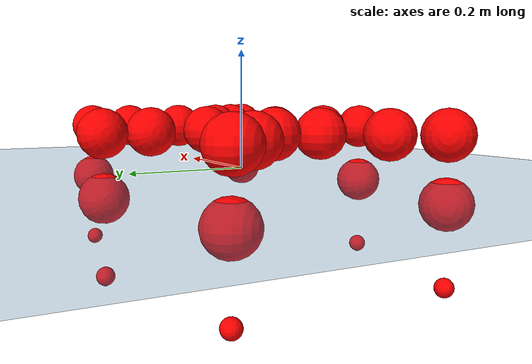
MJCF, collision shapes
<mujoco model="Golem">
  <compiler angle="radian" assetdir="assets" balanceinertia="true" inertiafromgeom="false"/>

  <option timestep="0.005" density="1.2" viscosity="2e-05"/>

  <size nkey="1"/>

  <visual>
    <quality shadowsize="8192"/>
    <map shadowclip="0.5"/>
  </visual>

  <default>
    <default class="/">
      <joint armature="0.01" damping="0.01" frictionloss="0.01"/>
      <geom contype="0" conaffinity="0" group="1" solref="-1000 -80"/>
      <site size="0.01 0.005 0.005" group="5"/>
      <general forcelimited="true" biastype="affine" gainprm="25" biasprm="0 -25 -0.5"/>
      <default class="visual">
        <geom type="mesh" group="2"/>
      </default>
      <default class="collision">
        <geom group="3"/>
      </default>
      <default class="foot">
        <geom size="0.01 0 0" condim="6" group="4" priority="1" solimp="0.015 1 0.01"/>
      </default>
      <default class="reward_collision_sphere">
        <geom group="5" rgba="1 0 0 1"/>
      </default>
    </default>
  </default>

  <asset>
    <texture type="skybox" colorspace="auto" name="//unnamed_texture_0" builtin="gradient" rgb1="0.95 0.95 0.95" rgb2="0.95 0.95 0.95" width="100" height="600"/>
    <texture type="2d" colorspace="auto" name="texplane" builtin="checker" rgb1="0.345 0.575 0.748" rgb2="0.345 0.575 0.748" markrgb="1 1 1" width="512" height="512"/>
    <material name="MatPlane" class="/" texture="texplane" texuniform="true" texrepeat="2 2" specular="0.9"/>
    <mesh name="body" class="/" file="body.stl" scale="0.001 0.001 0.001"/>
    <mesh name="coxa" class="/" file="coxa.stl" scale="0.001 0.001 0.001"/>
    <mesh name="femur" class="/" file="femur.stl" scale="0.001 0.001 0.001"/>
    <mesh name="tibia" class="/" file="tibia.stl" scale="0.001 0.001 0.001"/>
    <mesh name="tarsus" class="/" file="tarsus.stl" scale="0.001 0.001 0.001"/>
  </asset>

  <worldbody>
    <geom name="floor" class="/" size="100 100 0.125" type="plane" group="0" material="MatPlane"/>
    <light name="toplight_shadow" class="/" pos="0 0 5" dir="0.0990148 0.0990148 -0.990148" type="directional" ambient="0.04 0.04 0.04" diffuse="0.55 0.55 0.55" specular="0.12 0.12 0.12"/>
    <light name="toplight_fill" class="/" pos="0 0 5" dir="0.0990148 0.0990148 -0.990148" type="directional" castshadow="false" ambient="0.04 0.04 0.04" diffuse="0.3 0.3 0.3" specular="0.08 0.08 0.08"/>
    <body name="trunk" pos="0.000866561 6.58858e-05 0.000721201" quat="1 -6.96313e-05 1.66071e-05 0.000174565">
      <inertial pos="-0.000326175 -0.00074659 -0.00376212" quat="1 -0.000349147 5.1725e-06 0.000346027" mass="3.48106" diaginertia="0.0192626 0.00252717 0.0117175"/>
      <joint name="//unnamed_joint_0" type="free"/>
      <geom name="//unnamed_geom_1" class="/" pos="0 0 0.0659054" quat="1 0 0 0" type="mesh" rgba="0.9 0.9 0.9 1" mesh="body"/>
      <site name="imu" class="/" pos="0.145366 -0.000349634 0.106041" size="0.0097601"/>
      <camera name="track" class="/" pos="0 -1.51728 0" quat="0.707107 0.707107 0 0" mode="trackcom"/>
      <camera name="ego_camera" class="/" pos="0.148151 0 0.102977" quat="-0.5 -0.5 0.5 0.5"/>
      <body name="coxa_RR" pos="-0.202183 -0.0636908 0.0655333" quat="0.382841 3.15699e-05 0.000107248 -0.923814">
        <inertial pos="-0.000233374 -3.86121e-05 0.000716956" quat="0.99999 0.00223161 -0.00357088 -0.00134427" mass="0.187948" diaginertia="0.0193195 0.00254092 0.0116889"/>
        <joint name="coxa_joint_RR" class="/" pos="0 0 0" axis="-0.00599607 0.000891984 -0.999982" range="-3.13008 3.13901" armature="0.0100505" damping="0.00566676" frictionloss="0.0101645"/>
        <geom name="//unnamed_geom_2" class="/" type="mesh" rgba="0.2 0.2 0.2 1" mesh="coxa"/>
        <geom name="//unnamed_geom_3" class="reward_collision_sphere" size="0.0390404" pos="-0.0341886 0 0"/>
        <body name="femur_RR" pos="0.067269 0.00137557 -8.65606e-05" quat="0.499948 -0.500305 0.499817 0.49993">
          <inertial pos="0.000382692 -0.000101523 0.000581276" quat="0.999997 0.000187665 -0.00190517 0.00145002" mass="0.185871" diaginertia="0.0190088 0.00251077 0.0115647"/>
          <joint name="femur_joint_RR" class="/" pos="0 0 0" axis="-0.00222192 1.38812e-05 -0.999998" range="-3.13025 3.13943" armature="0.00983117" damping="0" frictionloss="0.0100652"/>
          <geom name="//unnamed_geom_4" class="/" type="mesh" rgba="0.9 0.9 0.9 1" mesh="femur"/>
          <geom name="//unnamed_geom_5" class="reward_collision_sphere" size="0.0390404"/>
          <body name="tibia_RR" pos="-0.000628478 -0.0816322 -0.000197911" quat="-3.39072e-05 1 1.74317e-05 9.95204e-05">
            <inertial pos="-0.000599802 -0.00080874 -0.000381414" quat="1 0.000273072 0.000302355 -0.000484777" mass="0.184507" diaginertia="0.0191135 0.00251267 0.0115547"/>
            <joint name="tibia_joint_RR" class="/" pos="0 0 0" axis="-0.000951354 -0.00028082 1" range="-3.14002 3.13895" armature="0.0097726" damping="0.00171579" frictionloss="0.0101913"/>
            <geom name="//unnamed_geom_6" class="/" type="mesh" rgba="0.2 0.2 0.2 1" mesh="tibia"/>
            <geom name="//unnamed_geom_7" class="reward_collision_sphere" size="0.0390404"/>
            <body name="tarsus_RR" pos="0.0994231 -0.000595756 -0.000987661" quat="1 -1.44452e-05 -7.02851e-06 1.8764e-05">
              <inertial pos="0.0693834 0.000695606 0.000172211" quat="0.503247 0.497753 0.499128 0.499856" mass="0.183441" diaginertia="0.019132 0.00249072 0.0115948"/>
              <joint name="tarsus_joint_RR" class="/" pos="0 0 0" axis="-5.09996e-05 0.000277603 1" range="-3.14929 3.15254" armature="0.00962376" damping="0.00183215" frictionloss="0.00976762"/>
              <geom name="//unnamed_geom_8" class="/" type="mesh" rgba="0.9 0.9 0.9 1" mesh="tarsus"/>
              <geom name="foot_1" class="foot" size="0.00934099" pos="0.127637 0 0" quat="0 -0.707107 0 0.707107"/>
              <geom name="//unnamed_geom_10" class="reward_collision_sphere" size="0.0390404"/>
              <geom name="//unnamed_geom_11" class="reward_collision_sphere" size="0.0146401" pos="0.122509 0 0"/>
              <site name="foot_1" class="foot" pos="0.127637 0 0" quat="0 -0.707107 0 0.707107" size="0.0097601"/>
            </body>
          </body>
        </body>
      </body>
      <body name="coxa_RM" pos="-0.000587226 -0.101283 0.064866" quat="0.707026 5.57767e-05 -0.000245025 -0.707187">
        <inertial pos="-0.000147107 0.000933215 -0.000281363" quat="0.999998 0.0011757 -0.000682273 -0.00128978" mass="0.18536" diaginertia="0.0191835 0.00251338 0.011495"/>
        <joint name="coxa_joint_RM" class="/" pos="0 0 0" axis="-3.03955e-05 -0.000859503 -1" range="-3.14799 3.14489" armature="0.00973644" damping="0.00896306" frictionloss="0.00971348"/>
        <geom name="//unnamed_geom_12" class="/" type="mesh" rgba="0.2 0.2 0.2 1" mesh="coxa"/>
        <geom name="//unnamed_geom_13" class="reward_collision_sphere" size="0.0390404" pos="-0.0341886 0 0"/>
        <body name="femur_RM" pos="0.0669727 -0.000719461 0.00106147" quat="0.500002 -0.499997 0.500007 0.499994">
          <inertial pos="-0.000166251 0.000739867 -0.000632474" quat="1 -7.05308e-05 0.000196858 -6.64461e-06" mass="0.184871" diaginertia="0.0191894 0.00251142 0.011491"/>
          <joint name="femur_joint_RM" class="/" pos="0 0 0" axis="-0.00173641 0.00264349 -0.999995" range="-3.13064 3.13926" armature="0.00958324" damping="0.00507005" frictionloss="0.0098531"/>
          <geom name="//unnamed_geom_14" class="/" type="mesh" rgba="0.9 0.9 0.9 1" mesh="femur"/>
          <geom name="//unnamed_geom_15" class="reward_collision_sphere" size="0.0390404"/>
          <body name="tibia_RM" pos="0.000711243 -0.0829367 -2.10564e-05" quat="-7.73187e-05 1 -0.000276215 -7.95241e-05">
            <inertial pos="-1.16296e-05 0.000402917 0.000190772" quat="1 0.000247307 0.00019257 -0.000117608" mass="0.184827" diaginertia="0.0189672 0.00248024 0.0115643"/>
            <joint name="tibia_joint_RM" class="/" pos="0 0 0" axis="-0.000300697 -0.000468189 1" range="-3.14247 3.14505" armature="0.00952594" damping="0" frictionloss="0.00951644"/>
            <geom name="//unnamed_geom_16" class="/" type="mesh" rgba="0.2 0.2 0.2 1" mesh="tibia"/>
            <geom name="//unnamed_geom_17" class="reward_collision_sphere" size="0.0390404"/>
            <body name="tarsus_RM" pos="0.100381 -0.000583527 0.000510425" quat="1 -8.1152e-05 0.000116573 -7.94663e-06">
              <inertial pos="0.0682196 0.000701396 -0.000662409" quat="0.503111 0.499459 0.499157 0.49826" mass="0.185997" diaginertia="0.0190219 0.00251269 0.0115191"/>
              <joint name="tarsus_joint_RM" class="/" pos="0 0 0" axis="-0.000619225 -0.000589858 1" stiffness="3.47639e-06" range="-3.13353 3.13287" armature="0.00970804" damping="0.00748483" frictionloss="0.00954766"/>
              <geom name="//unnamed_geom_18" class="/" type="mesh" rgba="0.9 0.9 0.9 1" mesh="tarsus"/>
              <geom name="foot_2" class="foot" size="0.00982162" pos="0.127637 0 0" quat="0 -0.707107 0 0.707107"/>
              <geom name="//unnamed_geom_20" class="reward_collision_sphere" size="0.0390404"/>
              <geom name="//unnamed_geom_21" class="reward_collision_sphere" size="0.0146401" pos="0.122509 0 0"/>
              <site name="foot_2" class="foot" pos="0.127637 0 0" quat="0 -0.707107 0 0.707107" size="0.0097601"/>
            </body>
          </body>
        </body>
      </body>
      <body name="coxa_RF" pos="0.203585 -0.0633641 0.0657699" quat="0.924065 -2.64534e-05 -0.000309776 -0.382235">
        <inertial pos="-0.000159815 -0.00091849 0.000735621" quat="0.999999 0.000193764 0.000742578 -0.00118358" mass="0.183155" diaginertia="0.0189977 0.0025012 0.0115281"/>
        <joint name="coxa_joint_RF" class="/" pos="0 0 0" axis="-0.00299675 -0.000130024 -0.999996" range="-3.13808 3.12147" armature="0.00980294" damping="0" frictionloss="0.00969867"/>
        <geom name="//unnamed_geom_22" class="/" type="mesh" rgba="0.2 0.2 0.2 1" mesh="coxa"/>
        <geom name="//unnamed_geom_23" class="reward_collision_sphere" size="0.0390404" pos="-0.0341886 0 0"/>
        <body name="femur_RF" pos="0.067761 0.00118286 -0.000268275" quat="0.49997 -0.500057 0.499985 0.499988">
          <inertial pos="0.000408126 -0.000147325 -0.000529" quat="0.999998 0.000396886 0.00170386 0.000311254" mass="0.1859" diaginertia="0.0191628 0.00247059 0.0114957"/>
          <joint name="femur_joint_RF" class="/" pos="0 0 0" axis="-6.21386e-05 0.000359828 -1" stiffness="4.43075e-05" range="-3.13808 3.1474" armature="0.00973166" damping="0.0056451" frictionloss="0.0101404"/>
          <geom name="//unnamed_geom_24" class="/" type="mesh" rgba="0.9 0.9 0.9 1" mesh="femur"/>
          <geom name="//unnamed_geom_25" class="reward_collision_sphere" size="0.0390404"/>
          <body name="tibia_RF" pos="0.000242275 -0.0831289 -0.000227645" quat="1.97237e-05 1 0.0001514 -8.72511e-05">
            <inertial pos="-0.000706903 0.000722232 -7.04892e-05" quat="0.999998 -0.00158484 0.000811424 -0.000690956" mass="0.188319" diaginertia="0.0194307 0.00254136 0.0115715"/>
            <joint name="tibia_joint_RF" class="/" pos="0 0 0" axis="0.00453627 -0.003333 0.999984" range="-3.13862 3.13953" armature="0.00999853" damping="0.00497922" frictionloss="0.00988859"/>
            <geom name="//unnamed_geom_26" class="/" type="mesh" rgba="0.2 0.2 0.2 1" mesh="tibia"/>
            <geom name="//unnamed_geom_27" class="reward_collision_sphere" size="0.0390404"/>
            <body name="tarsus_RF" pos="0.0999724 0.0010866 -0.000761748" quat="1 -0.000109557 0.000306078 -0.000187635">
              <inertial pos="0.0676354 0.000178429 -0.000321256" quat="0.500455 0.499606 0.500247 0.499692" mass="0.185404" diaginertia="0.0192056 0.00253278 0.0114873"/>
              <joint name="tarsus_joint_RF" class="/" pos="0 0 0" axis="0.000969375 -0.000523039 0.999999" stiffness="0.00281609" range="-3.12538 3.13736" armature="0.0097368" damping="0.00251728" frictionloss="0.00962904"/>
              <geom name="//unnamed_geom_28" class="/" type="mesh" rgba="0.9 0.9 0.9 1" mesh="tarsus"/>
              <geom name="foot_3" class="foot" size="0.0100619" pos="0.127637 0 0" quat="0 -0.707107 0 0.707107"/>
              <geom name="//unnamed_geom_30" class="reward_collision_sphere" size="0.0390404"/>
              <geom name="//unnamed_geom_31" class="reward_collision_sphere" size="0.0146401" pos="0.122509 0 0"/>
              <site name="foot_3" class="foot" pos="0.127637 0 0" quat="0 -0.707107 0 0.707107" size="0.0097601"/>
            </body>
          </body>
        </body>
      </body>
      <body name="coxa_LR" pos="-0.202435 0.0657828 0.067014" quat="0.382892 9.28499e-05 -4.64988e-05 0.923793">
        <inertial pos="-0.000164623 -0.000643492 0.000706901" quat="1 0.000120308 -0.000676043 0.000523724" mass="0.185181" diaginertia="0.0192045 0.00252297 0.0115564"/>
        <joint name="coxa_joint_LR" class="/" pos="0 0 0" axis="-0.000241164 0.00211542 -0.999998" range="-3.12736 3.14163" armature="0.00993538" damping="0.00857268" frictionloss="0.00967674"/>
        <geom name="//unnamed_geom_32" class="/" type="mesh" rgba="0.2 0.2 0.2 1" mesh="coxa"/>
        <geom name="//unnamed_geom_33" class="reward_collision_sphere" size="0.0390404" pos="-0.0341886 0 0"/>
        <body name="femur_LR" pos="0.0688213 -0.00156883 -0.00237379" quat="0.500001 -0.499984 0.499989 0.500025">
          <inertial pos="-0.000379873 0.000303957 -0.000971898" quat="1 8.59449e-05 0.000145629 -3.33343e-05" mass="0.183696" diaginertia="0.019247 0.00250443 0.0115531"/>
          <joint name="femur_joint_LR" class="/" pos="0 0 0" axis="-0.000236907 0.000130604 1" stiffness="3.76609e-05" range="-3.15059 3.13913" armature="0.00973162" damping="0.00728124" frictionloss="0.00984407"/>
          <geom name="//unnamed_geom_34" class="/" type="mesh" rgba="0.9 0.9 0.9 1" mesh="femur"/>
          <geom name="//unnamed_geom_35" class="reward_collision_sphere" size="0.0390404"/>
          <body name="tibia_LR" pos="-0.000731793 -0.0834069 -0.00203674" quat="-0.000214378 1 -1.9433e-05 0.000181104">
            <inertial pos="-0.000835712 0.000294118 -0.000195153" quat="1 0.000623116 0.000175068 0.000368585" mass="0.184454" diaginertia="0.0193378 0.00249924 0.0117094"/>
            <joint name="tibia_joint_LR" class="/" pos="0 0 0" axis="-0.00197109 0.00104348 -0.999998" range="-3.13433 3.14783" armature="0.009756" damping="0.00322752" frictionloss="0.009838"/>
            <geom name="//unnamed_geom_36" class="/" type="mesh" rgba="0.2 0.2 0.2 1" mesh="tibia"/>
            <geom name="//unnamed_geom_37" class="reward_collision_sphere" size="0.0390404"/>
            <body name="tarsus_LR" pos="0.0999806 0.000681425 0.00208074" quat="1 -5.22755e-05 -1.70775e-05 4.00081e-05">
              <inertial pos="0.0691045 0.0010075 -7.605e-05" quat="0.499775 0.500208 0.499941 0.500076" mass="0.185514" diaginertia="0.0192358 0.00252003 0.0114776"/>
              <joint name="tarsus_joint_LR" class="/" pos="0 0 0" axis="-0.000647726 -5.12104e-05 -1" range="-3.13753 3.13359" armature="0.00958621" damping="0.0259071" frictionloss="0.00966164"/>
              <geom name="//unnamed_geom_38" class="/" type="mesh" rgba="0.9 0.9 0.9 1" mesh="tarsus"/>
              <geom name="foot_4" class="foot" size="0.00954876" pos="0.127637 0 0" quat="0.707107 0 -0.707107 0"/>
              <geom name="//unnamed_geom_40" class="reward_collision_sphere" size="0.0390404"/>
              <geom name="//unnamed_geom_41" class="reward_collision_sphere" size="0.0146401" pos="0.122509 0 0"/>
              <site name="foot_4" class="foot" pos="0.127637 0 0" quat="0.707107 0 -0.707107 0" size="0.0097601"/>
            </body>
          </body>
        </body>
      </body>
      <body name="coxa_LM" pos="-0.000894344 0.0984708 0.0659926" quat="0.707184 8.06109e-05 0.000117016 0.707029">
        <inertial pos="6.42106e-05 9.216e-05 0.000713829" quat="1 -5.93834e-05 4.31392e-05 0.000134464" mass="0.186689" diaginertia="0.0194786 0.00252279 0.0115646"/>
        <joint name="coxa_joint_LM" class="/" pos="0 0 0" axis="0.000925453 0.00062748 -0.999999" range="-3.13818 3.1383" armature="0.00974463" damping="4.38771e-05" frictionloss="0.0101845"/>
        <geom name="//unnamed_geom_42" class="/" type="mesh" rgba="0.2 0.2 0.2 1" mesh="coxa"/>
        <geom name="//unnamed_geom_43" class="reward_collision_sphere" size="0.0390404" pos="-0.0341886 0 0"/>
        <body name="femur_LM" pos="0.064408 0.00132841 -0.000927898" quat="0.500036 -0.499934 0.499961 0.500069">
          <inertial pos="-0.000998904 -0.000416916 0.000829081" quat="1 0.00034385 0.000656665 -0.000219784" mass="0.184001" diaginertia="0.0188289 0.00249363 0.0114037"/>
          <joint name="femur_joint_LM" class="/" pos="0 0 0" axis="0.00608943 -0.00161525 0.99998" range="-3.13839 3.1514" armature="0.00958508" damping="0" frictionloss="0.00977513"/>
          <geom name="//unnamed_geom_44" class="/" type="mesh" rgba="0.9 0.9 0.9 1" mesh="femur"/>
          <geom name="//unnamed_geom_45" class="reward_collision_sphere" size="0.0390404"/>
          <body name="tibia_LM" pos="0.000526129 -0.0791296 0.00118294" quat="9.56635e-05 1 1.92798e-05 6.93009e-06">
            <inertial pos="-0.000146101 -0.00156574 -0.000202506" quat="1 -0.000613407 -9.92861e-05 -0.00037466" mass="0.186321" diaginertia="0.0191736 0.00249731 0.0114152"/>
            <joint name="tibia_joint_LM" class="/" pos="0 0 0" axis="0.00123582 0.00151258 -0.999998" range="-3.13321 3.15014" armature="0.010169" damping="0" frictionloss="0.00934926"/>
            <geom name="//unnamed_geom_46" class="/" type="mesh" rgba="0.2 0.2 0.2 1" mesh="tibia"/>
            <geom name="//unnamed_geom_47" class="reward_collision_sphere" size="0.0390404"/>
            <body name="tarsus_LM" pos="0.0998345 -0.000488214 -0.000620852" quat="1 -1.9208e-05 -8.83455e-06 -1.01531e-07">
              <inertial pos="0.0690007 0.000141974 0.000824193" quat="0.499601 0.501333 0.500602 0.498459" mass="0.187093" diaginertia="0.0195253 0.00251261 0.0117544"/>
              <joint name="tarsus_joint_LM" class="/" pos="0 0 0" axis="0.000621653 -0.000467608 -1" range="-3.15366 3.13844" armature="0.00983377" damping="0" frictionloss="0.00967623"/>
              <geom name="//unnamed_geom_48" class="/" type="mesh" rgba="0.9 0.9 0.9 1" mesh="tarsus"/>
              <geom name="foot_5" class="foot" size="0.0101944" pos="0.127637 0 0" quat="0.707107 0 -0.707107 0"/>
              <geom name="//unnamed_geom_50" class="reward_collision_sphere" size="0.0390404"/>
              <geom name="//unnamed_geom_51" class="reward_collision_sphere" size="0.0146401" pos="0.122509 0 0"/>
              <site name="foot_5" class="foot" pos="0.127637 0 0" quat="0.707107 0 -0.707107 0" size="0.0097601"/>
            </body>
          </body>
        </body>
      </body>
      <body name="coxa_LF" pos="0.202855 0.0633036 0.0656331" quat="0.923883 -4.14355e-06 3.29844e-05 0.382675">
        <inertial pos="0.000220451 -0.000395457 -9.67908e-05" quat="0.999999 -0.000513868 0.000707922 -0.00055683" mass="0.188304" diaginertia="0.0194206 0.00251928 0.0116142"/>
        <joint name="coxa_joint_LF" class="/" pos="0 0 0" axis="-0.00628094 0.00516971 -0.999967" range="-3.15459 3.13825" armature="0.00940162" damping="0" frictionloss="0.0100083"/>
        <geom name="//unnamed_geom_52" class="/" type="mesh" rgba="0.2 0.2 0.2 1" mesh="coxa"/>
        <geom name="//unnamed_geom_53" class="reward_collision_sphere" size="0.0390404" pos="-0.0341886 0 0"/>
        <body name="femur_LF" pos="0.0675919 0.000932187 -0.000768457" quat="0.49995 -0.500162 0.499833 0.500055">
          <inertial pos="0.00030814 -0.000903585 0.000239092" quat="0.999997 -0.0005458 -0.00223552 0.00014105" mass="0.184142" diaginertia="0.0190165 0.00249008 0.011561"/>
          <joint name="femur_joint_LF" class="/" pos="0 0 0" axis="0.00438492 -0.00115974 0.99999" range="-3.14898 3.14021" armature="0.00932164" damping="0.00163511" frictionloss="0.00981196"/>
          <geom name="//unnamed_geom_54" class="/" type="mesh" rgba="0.9 0.9 0.9 1" mesh="femur"/>
          <geom name="//unnamed_geom_55" class="reward_collision_sphere" size="0.0390404"/>
          <body name="tibia_LF" pos="0.000485148 -0.0816039 0.000153318" quat="-2.00693e-07 1 1.15812e-06 7.0975e-06">
            <inertial pos="0.000148116 0.000261587 0.000687586" quat="1 -0.000156472 -0.000267252 0.000190045" mass="0.18594" diaginertia="0.0191413 0.00248407 0.0116648"/>
            <joint name="tibia_joint_LF" class="/" pos="0 0 0" axis="-0.00573948 4.90614e-05 -0.999984" range="-3.15682 3.1372" armature="0.00952442" damping="0.00333885" frictionloss="0.0101912"/>
            <geom name="//unnamed_geom_56" class="/" type="mesh" rgba="0.2 0.2 0.2 1" mesh="tibia"/>
            <geom name="//unnamed_geom_57" class="reward_collision_sphere" size="0.0390404"/>
            <body name="tarsus_LF" pos="0.100749 -0.000325111 -5.20916e-06" quat="1 4.52043e-05 -2.95935e-05 -4.07115e-05">
              <inertial pos="0.0695508 -0.000177419 5.43161e-05" quat="0.50178 0.499731 0.498134 0.500348" mass="0.186139" diaginertia="0.0191608 0.00250633 0.0116652"/>
              <joint name="tarsus_joint_LF" class="/" pos="0 0 0" axis="-0.00102261 0.000755154 -0.999999" range="-3.13044 3.13356" armature="0.00932588" damping="0.0115182" frictionloss="0.00936155"/>
              <geom name="//unnamed_geom_58" class="/" type="mesh" rgba="0.9 0.9 0.9 1" mesh="tarsus"/>
              <geom name="foot_6" class="foot" size="0.00948188" pos="0.127637 0 0" quat="0.707107 0 -0.707107 0"/>
              <geom name="//unnamed_geom_60" class="reward_collision_sphere" size="0.0390404"/>
              <geom name="//unnamed_geom_61" class="reward_collision_sphere" size="0.0146401" pos="0.122509 0 0"/>
              <site name="foot_6" class="foot" pos="0.127637 0 0" quat="0.707107 0 -0.707107 0" size="0.0097601"/>
            </body>
          </body>
        </body>
      </body>
    </body>
  </worldbody>

  <contact>
    <pair class="/" geom1="floor" geom2="foot_1" name="//unnamed_contact_0"/>
    <pair class="/" geom1="floor" geom2="foot_2" name="//unnamed_contact_1"/>
    <pair class="/" geom1="floor" geom2="foot_3" name="//unnamed_contact_2"/>
    <pair class="/" geom1="floor" geom2="foot_4" name="//unnamed_contact_3"/>
    <pair class="/" geom1="floor" geom2="foot_5" name="//unnamed_contact_4"/>
    <pair class="/" geom1="floor" geom2="foot_6" name="//unnamed_contact_5"/>
  </contact>

  <actuator>
    <general name="coxa_joint_RR" class="/" joint="coxa_joint_RR" forcerange="-6.99934 6.99934" gainprm="23.4135" biasprm="0 -23.4135 -0.507563"/>
    <general name="femur_joint_RR" class="/" joint="femur_joint_RR" forcerange="-7.18211 7.18211" gainprm="23.4135" biasprm="0 -23.4135 -0.507563"/>
    <general name="tibia_joint_RR" class="/" joint="tibia_joint_RR" forcerange="-7.13197 7.13197" gainprm="23.4135" biasprm="0 -23.4135 -0.507563"/>
    <general name="tarsus_joint_RR" class="/" joint="tarsus_joint_RR" forcerange="-7.06423 7.06423" gainprm="23.4135" biasprm="0 -23.4135 -0.507563"/>
    <general name="coxa_joint_RM" class="/" joint="coxa_joint_RM" forcerange="-7.19809 7.19809" gainprm="23.4135" biasprm="0 -23.4135 -0.507563"/>
    <general name="femur_joint_RM" class="/" joint="femur_joint_RM" forcerange="-7.18282 7.18282" gainprm="23.4135" biasprm="0 -23.4135 -0.507563"/>
    <general name="tibia_joint_RM" class="/" joint="tibia_joint_RM" forcerange="-7.09676 7.09676" gainprm="23.4135" biasprm="0 -23.4135 -0.507563"/>
    <general name="tarsus_joint_RM" class="/" joint="tarsus_joint_RM" forcerange="-7.32409 7.32409" gainprm="23.4135" biasprm="0 -23.4135 -0.507563"/>
    <general name="coxa_joint_RF" class="/" joint="coxa_joint_RF" forcerange="-7.20363 7.20363" gainprm="23.4135" biasprm="0 -23.4135 -0.507563"/>
    <general name="femur_joint_RF" class="/" joint="femur_joint_RF" forcerange="-7.13777 7.13777" gainprm="23.4135" biasprm="0 -23.4135 -0.507563"/>
    <general name="tibia_joint_RF" class="/" joint="tibia_joint_RF" forcerange="-7.10558 7.10558" gainprm="23.4135" biasprm="0 -23.4135 -0.507563"/>
    <general name="tarsus_joint_RF" class="/" joint="tarsus_joint_RF" forcerange="-7.00776 7.00776" gainprm="23.4135" biasprm="0 -23.4135 -0.507563"/>
    <general name="coxa_joint_LR" class="/" joint="coxa_joint_LR" forcerange="-7.12039 7.12039" gainprm="23.4135" biasprm="0 -23.4135 -0.507563"/>
    <general name="femur_joint_LR" class="/" joint="femur_joint_LR" forcerange="-7.23329 7.23329" gainprm="23.4135" biasprm="0 -23.4135 -0.507563"/>
    <general name="tibia_joint_LR" class="/" joint="tibia_joint_LR" forcerange="-7.21337 7.21337" gainprm="23.4135" biasprm="0 -23.4135 -0.507563"/>
    <general name="tarsus_joint_LR" class="/" joint="tarsus_joint_LR" forcerange="-7.12947 7.12947" gainprm="23.4135" biasprm="0 -23.4135 -0.507563"/>
    <general name="coxa_joint_LM" class="/" joint="coxa_joint_LM" forcerange="-7.07822 7.07822" gainprm="23.4135" biasprm="0 -23.4135 -0.507563"/>
    <general name="femur_joint_LM" class="/" joint="femur_joint_LM" forcerange="-7.28945 7.28945" gainprm="23.4135" biasprm="0 -23.4135 -0.507563"/>
    <general name="tibia_joint_LM" class="/" joint="tibia_joint_LM" forcerange="-7.12615 7.12615" gainprm="23.4135" biasprm="0 -23.4135 -0.507563"/>
    <general name="tarsus_joint_LM" class="/" joint="tarsus_joint_LM" forcerange="-6.90137 6.90137" gainprm="23.4135" biasprm="0 -23.4135 -0.507563"/>
    <general name="coxa_joint_LF" class="/" joint="coxa_joint_LF" forcerange="-7.07062 7.07062" gainprm="23.4135" biasprm="0 -23.4135 -0.507563"/>
    <general name="femur_joint_LF" class="/" joint="femur_joint_LF" forcerange="-6.91062 6.91062" gainprm="23.4135" biasprm="0 -23.4135 -0.507563"/>
    <general name="tibia_joint_LF" class="/" joint="tibia_joint_LF" forcerange="-7.12731 7.12731" gainprm="23.4135" biasprm="0 -23.4135 -0.507563"/>
    <general name="tarsus_joint_LF" class="/" joint="tarsus_joint_LF" forcerange="-6.9109 6.9109" gainprm="23.4135" biasprm="0 -23.4135 -0.507563"/>
  </actuator>

  <sensor>
    <gyro site="imu" name="imu_angular_velocity"/>
    <velocimeter site="imu" name="imu_linear_velocity"/>
    <framelinvel objtype="site" objname="foot_1" name="foot_1_global_linear_velocity"/>
    <framelinvel objtype="site" objname="foot_2" name="foot_2_global_linear_velocity"/>
    <framelinvel objtype="site" objname="foot_3" name="foot_3_global_linear_velocity"/>
    <framelinvel objtype="site" objname="foot_4" name="foot_4_global_linear_velocity"/>
    <framelinvel objtype="site" objname="foot_5" name="foot_5_global_linear_velocity"/>
    <framelinvel objtype="site" objname="foot_6" name="foot_6_global_linear_velocity"/>
  </sensor>

  <keyframe>
    <key name="home" qpos="0 0 0.1457 1 0 0 0 0 0 0 0 0 0 0 0 0 0 0 0 0 0 0 0 0 0 0 0 0 0 0 0"/>
  </keyframe>
</mujoco>
